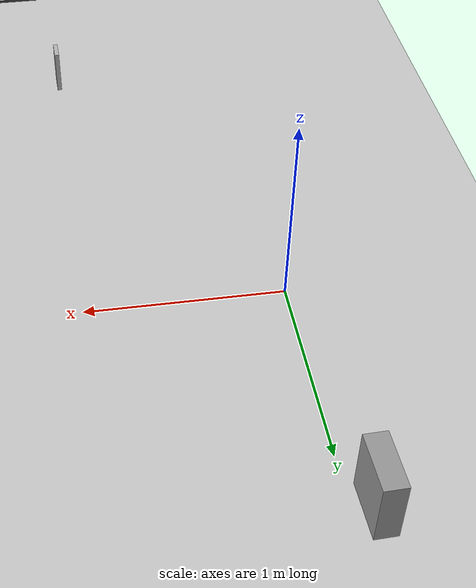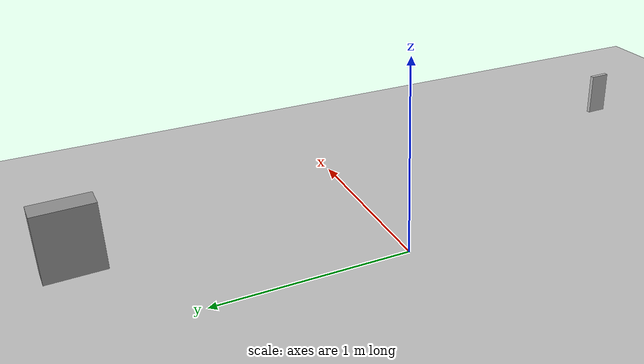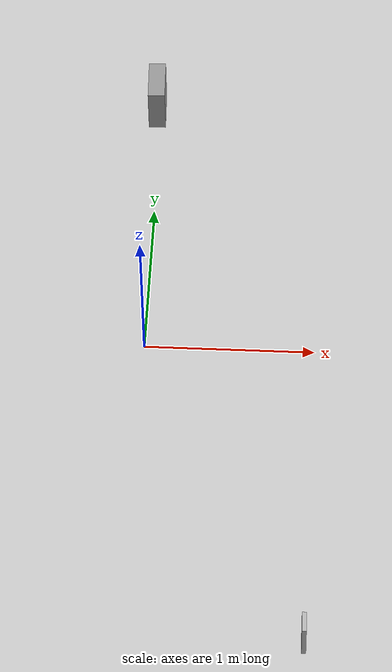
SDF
<sdf version="1.6">
 <world name="default">
  <scene>
   <ambient>0 0 0 1</ambient>
   <shadows>0</shadows>
   <grid>0</grid>
   <background>0.7 0.7 0.7 1</background>
  </scene>
  <include><uri>model://turtlebot3_autorace_2020/course2</uri><pose>0 0 0 0 0 -3.14</pose></include>
  <include>
   <uri>model://turtlebot3_autorace_2020/traffic_construction</uri>
   <pose>1 -1.96 0.125 0 -0 1.6</pose>
  </include>
  <light name="sun" type="directional">
   <pose>0 0 10 0 -0 0</pose>
   <diffuse>0.8 0.8 0.8 1</diffuse>
   <specular>0.1 0.1 0.1 1</specular>
   <attenuation>
    <range>1000</range>
    <constant>0.9</constant>
    <linear>0.01</linear>
    <quadratic>0.001</quadratic>
   </attenuation>
   <direction>-0.5 0.5 -1</direction>
  </light>
  <model name="ground2">
   <pose>0 0 -0.1 0 -0 0</pose>
   <static>1</static>
   <link name="ground">
    <collision name="ground_coll"><geometry><box><size>8 8 0.01</size></box></geometry></collision>
    <visual name="ground_vis">
     <geometry><box><size>10 10 0.01</size></box></geometry>
     <material>
      <script><uri>file://media/materials/scripts/gazebo.material</uri><name>Gazebo/FlatBlack</name></script>
     </material>
    </visual>
   </link>
  </model>
  <gravity>0 0 -9.8</gravity>
  <magnetic_field>6e-06 2.3e-05 -4.2e-05</magnetic_field>
  <atmosphere type="adiabatic"/>
  <physics name="default_physics" default="0" type="ode">
   <max_step_size>0.001</max_step_size>
   <real_time_factor>1</real_time_factor>
   <real_time_update_rate>1000</real_time_update_rate>
  </physics>
  <spherical_coordinates>
   <surface_model>EARTH_WGS84</surface_model>
   <latitude_deg>0</latitude_deg>
   <longitude_deg>0</longitude_deg>
   <elevation>0</elevation>
   <heading_deg>0</heading_deg>
  </spherical_coordinates>
  <light name="user_point_light_1" type="point">
   <pose>-1.648146 0.604519 1 0 -0 0</pose>
   <diffuse>0.5 0.5 0.5 1</diffuse>
   <specular>0.1 0.1 0.1 1</specular>
   <attenuation>
    <range>20</range>
    <constant>0.5</constant>
    <linear>0.01</linear>
    <quadratic>0.001</quadratic>
   </attenuation>
   <cast_shadows>0</cast_shadows>
   <direction>0 0 -1</direction>
  </light>
  <light name="user_point_light_2" type="point">
   <pose>1.63854 1.69565 1 0 -0 0</pose>
   <diffuse>0.5 0.5 0.5 1</diffuse>
   <specular>0.1 0.1 0.1 1</specular>
   <attenuation>
    <range>20</range>
    <constant>0.5</constant>
    <linear>0.01</linear>
    <quadratic>0.001</quadratic>
   </attenuation>
   <cast_shadows>0</cast_shadows>
   <direction>0 0 -1</direction>
  </light>
  <light name="user_point_light_3" type="point">
   <pose>0.42  -3.31 1 0 -0 0</pose>
   <diffuse>0.5 0.5 0.5 1</diffuse>
   <specular>0.1 0.1 0.1 1</specular>
   <attenuation>
    <range>20</range>
    <constant>0.5</constant>
    <linear>0.01</linear>
    <quadratic>0.001</quadratic>
   </attenuation>
   <cast_shadows>0</cast_shadows>
   <direction>0 0 -1</direction>
  </light>
  <model name="barrier_1">
   <link name="link">
    <inertial>
     <mass>1</mass>
     <inertia>
      <ixx>0.166667</ixx>
      <ixy>0</ixy>
      <ixz>0</ixz>
      <iyy>0.166667</iyy>
      <iyz>0</iyz>
      <izz>0.166667</izz>
     </inertia>
    </inertial>
    <visual name="visual">
     <geometry><box><size>0.25 0.1 0.3</size></box></geometry>
     <material>
      <script><name>Gazebo/Grey</name><uri>file://media/materials/scripts/gazebo.material</uri></script>
      <shader type="pixel"><normal_map>__default__</normal_map></shader>
      <ambient>0.3 0.3 0.3 1</ambient>
      <diffuse>0.7 0.7 0.7 1</diffuse>
      <specular>0.01 0.01 0.01 1</specular>
      <emissive>0 0 0 1</emissive>
     </material>
    </visual>
    <collision name="collision">
     <geometry><box><size>0.25 0.1 0.3</size></box></geometry>
     <surface>
      <friction>
       <ode><mu>1</mu><mu2>1</mu2><fdir1>0 0 0</fdir1><slip1>0</slip1><slip2>0</slip2></ode>
       <torsional>
        <coefficient>1</coefficient>
        <patch_radius>0</patch_radius>
        <surface_radius>0</surface_radius>
        <use_patch_radius>1</use_patch_radius>
        <ode><slip>0</slip></ode>
       </torsional>
      </friction>
      <bounce><restitution_coefficient>0</restitution_coefficient><threshold>1e+06</threshold></bounce>
      <contact>
       <collide_without_contact>0</collide_without_contact>
       <collide_without_contact_bitmask>1</collide_without_contact_bitmask>
       <collide_bitmask>1</collide_bitmask>
       <ode>
        <soft_cfm>0</soft_cfm>
        <soft_erp>0.2</soft_erp>
        <kp>1e+13</kp>
        <kd>1</kd>
        <max_vel>0.01</max_vel>
        <min_depth>0</min_depth>
       </ode>
       <bullet>
        <split_impulse>1</split_impulse>
        <split_impulse_penetration_threshold>-0.01</split_impulse_penetration_threshold>
        <soft_cfm>0</soft_cfm>
        <soft_erp>0.2</soft_erp>
        <kp>1e+13</kp>
        <kd>1</kd>
       </bullet>
      </contact>
     </surface>
    </collision>
   </link>
   <static>0</static>
   <pose>0 1.5 0.5 0 -0 1.6</pose>
  </model>
 </world>
</sdf>

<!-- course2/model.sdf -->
<sdf version="1.6">
  <model name="course">
    <static>true</static>
    <link name="course_link">
      <collision name="course_collision">
        <geometry>
          <plane>
            <normal>0 0 1</normal>
            <size>4 4</size>
          </plane>
        </geometry>
        <surface>
          <friction>
            <ode>
              <mu>100</mu>
              <mu2>50</mu2>
            </ode>
          </friction>
        </surface>
      </collision>
      <visual name="course_visual">
        <cast_shadows>false</cast_shadows>
        <geometry>
	        <plane>
            <normal>0 0 1</normal>
            <size>4 6</size>
          </plane>
        </geometry>
	      <material>
          <script>
            <uri>model://turtlebot3_autorace_2020/course2/materials/scripts</uri>
            <uri>model://turtlebot3_autorace_2020/course2/materials/textures</uri>
            <name>course</name>
          </script>
        </material>
      </visual>
    </link>
  </model>
</sdf>

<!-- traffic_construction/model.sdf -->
<sdf version="1.6">
  <model name="traffic_construction">
    <static>true</static>
    <link name="box">
      <pose>0 0 0 0 0 0</pose>
      <collision name="collision">
        <geometry>
          <box>
            <size>0.12 0.025 0.25</size>
          </box>
        </geometry>
      </collision>
      <visual name="visual">
        <geometry>
          <box>
            <size>0.12 0.025 0.25</size>
          </box>
        </geometry>
        <material>
          <script>
            <uri>model://turtlebot3_autorace_2020/traffic_construction/materials/scripts</uri>
            <uri>model://turtlebot3_autorace_2020/traffic_construction/materials/textures</uri>
            <name>traffic_construction</name>
          </script>
        </material>
      </visual>
    </link>
  </model>
</sdf>
